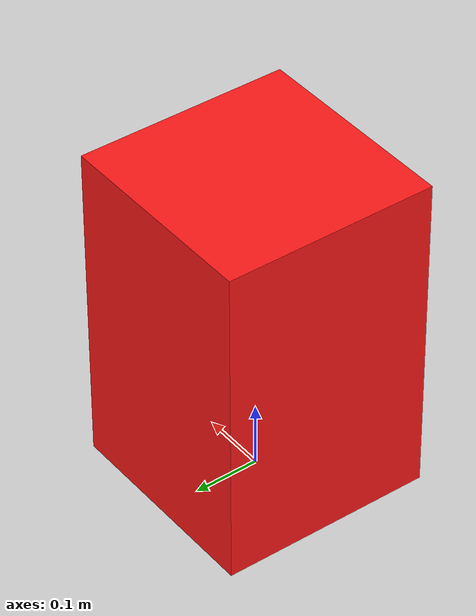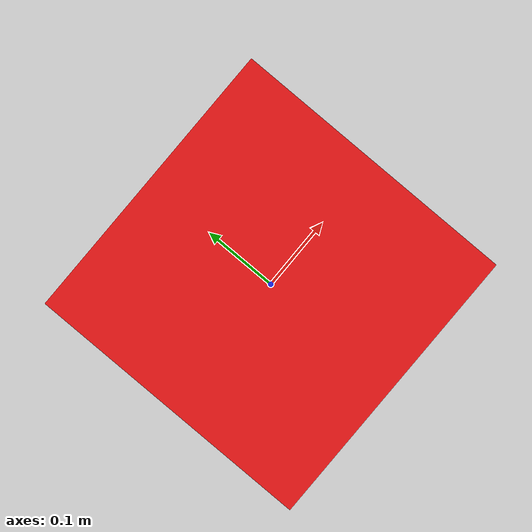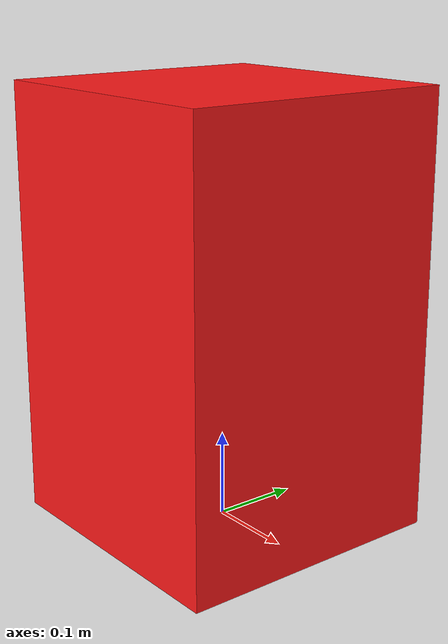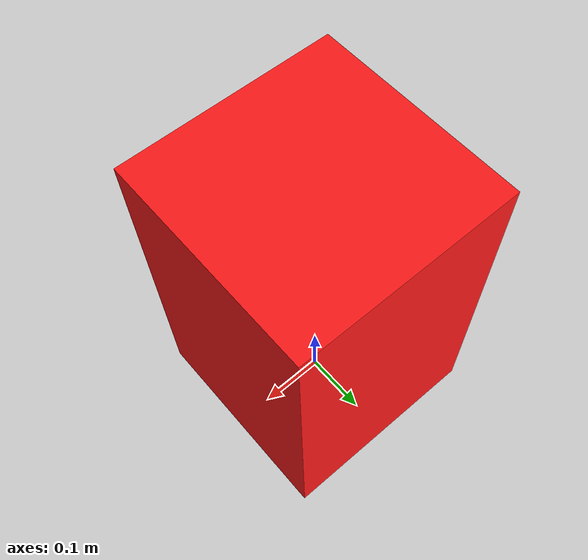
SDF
<?xml version="1.0"?>
<sdf version="1.6">
  <model name="temporary_box">
    <static>true</static>
    <pose>0 0 0.25 0 0 0</pose>
    <link name="body">
      <collision name="collision">
        <geometry>
          <box>
            <size>0.32 0.32 0.5</size>
          </box>
        </geometry>
      </collision>
      <visual name="visual">
        <geometry>
          <box>
            <size>0.32 0.32 0.5</size>
          </box>
        </geometry>
        <material>
          <ambient>1 0.1 0.1 1</ambient>
          <diffuse>1 0.1 0.1 1</diffuse>
        </material>
      </visual>
    </link>
  </model>
</sdf>
